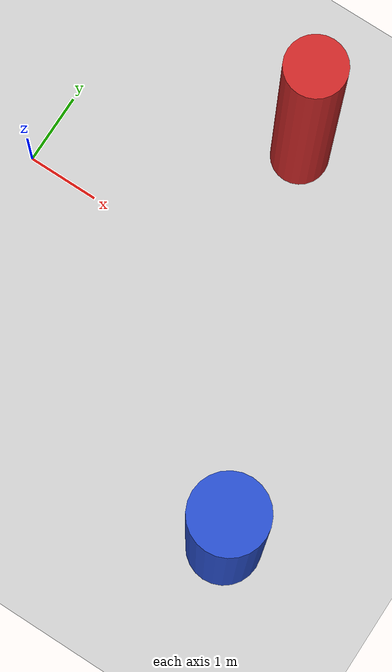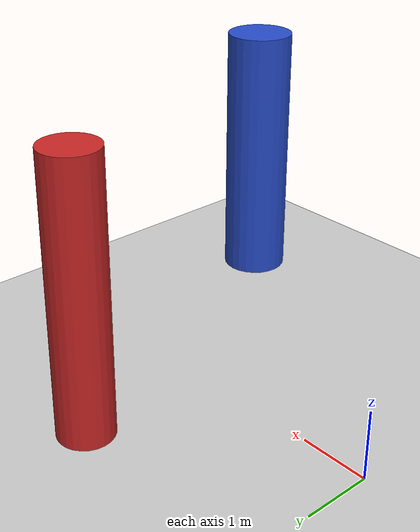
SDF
<?xml version="1.0" ?>
<sdf version="1.5">
  <world name="obstacle_avoidance">
    <!-- Sun -->
    <include>
      <uri>model://sun</uri>
    </include>

    <!-- Ground Plane -->
    <include>
      <uri>model://ground_plane</uri>
    </include>

    <!-- Physics Engine -->
    <physics name='default_physics' default='0' type='ode'>
      <gravity>0 0 -9.8066</gravity>
      <max_step_size>0.004</max_step_size>
      <real_time_factor>1</real_time_factor>
      <real_time_update_rate>250</real_time_update_rate>
    </physics>

    <!-- Spherical Coordinates for GPS -->
    <spherical_coordinates>
      <surface_model>EARTH_WGS84</surface_model>
      <latitude_deg>47.397971057728974</latitude_deg>
      <longitude_deg>8.546163739800146</longitude_deg>
      <elevation>0</elevation>
    </spherical_coordinates>

    <!-- Obstacle Pillar 1 -->
    <model name="cylinder_obs_1">
      <static>true</static>
      <pose>3 2 2.0 0 0 0</pose>
      <link name="link">
        <collision name="collision">
          <geometry>
            <cylinder>
              <radius>0.4</radius>
              <length>4.0</length>
            </cylinder>
          </geometry>
        </collision>
        <visual name="visual">
          <geometry>
            <cylinder>
              <radius>0.4</radius>
              <length>4.0</length>
            </cylinder>
          </geometry>
          <material>
            <script>
              <uri>file://media/materials/scripts/gazebo.material</uri>
              <name>Gazebo/Red</name>
            </script>
          </material>
        </visual>
      </link>
    </model>

    <!-- Obstacle Pillar 2 -->
    <model name="cylinder_obs_2">
      <static>true</static>
      <pose>5 -3 2.0 0 0 0</pose>
      <link name="link">
        <collision name="collision">
          <geometry>
            <cylinder>
              <radius>0.5</radius>
              <length>4.0</length>
            </cylinder>
          </geometry>
        </collision>
        <visual name="visual">
          <geometry>
            <cylinder>
              <radius>0.5</radius>
              <length>4.0</length>
            </cylinder>
          </geometry>
          <material>
            <script>
              <uri>file://media/materials/scripts/gazebo.material</uri>
              <name>Gazebo/Blue</name>
            </script>
          </material>
        </visual>
      </link>
    </model>
  </world>
</sdf>
